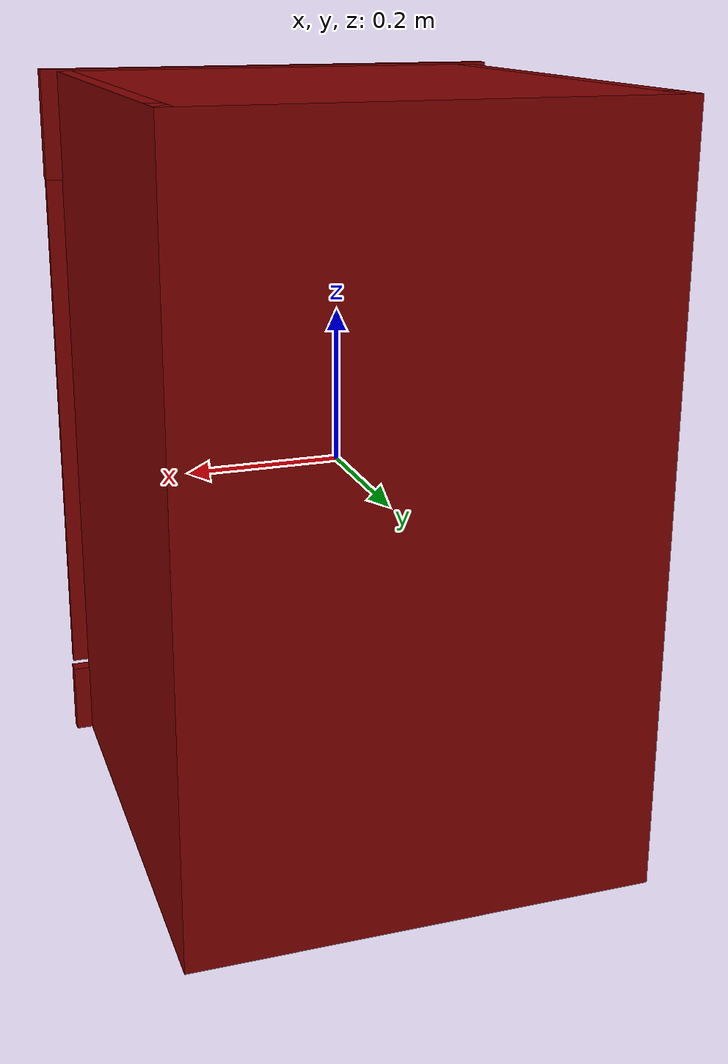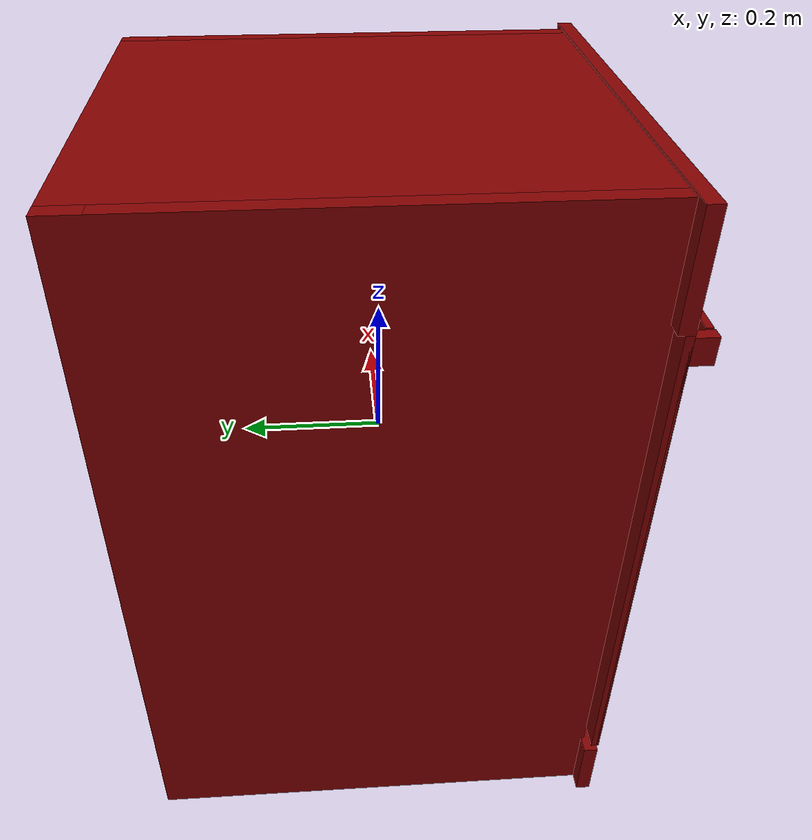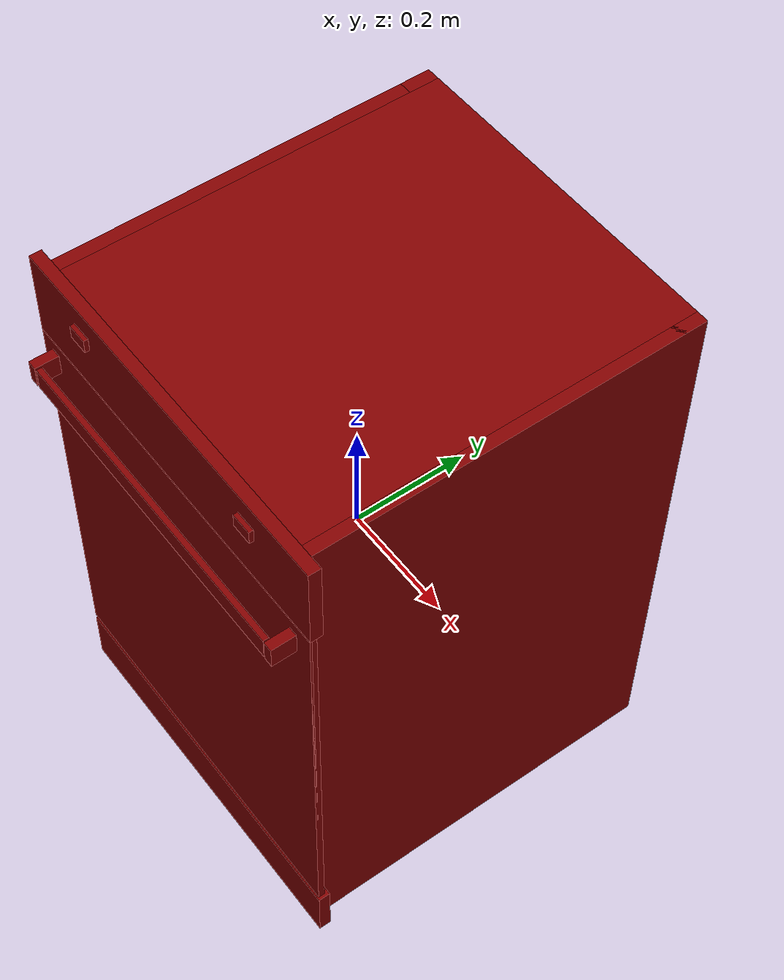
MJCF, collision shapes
<?xml version='1.0' encoding='UTF-8'?>
<mujoco model="model">
  <option timestep="0.002" gravity="0.0 0.0 -9.81"/>
  <compiler angle="radian"/>
  <asset>
    <mesh file="visuals/button_lock.obj" name="button_lock_vis"/>
    <mesh file="visuals/button_power.obj" name="button_power_vis"/>
    <mesh file="visuals/Body001.obj" name="Body001_vis"/>
    <mesh file="visuals/door.obj" name="door_vis"/>
    <mesh file="visuals/rack0.obj" name="rack0_vis"/>
    <mesh file="visuals/rack1.obj" name="rack1_vis"/>
    <texture file="visuals/T_BC001.png" name="Body001_material" type="2d"/>
    <material name="Body001_material" rgba="1 1 1 1.0" texture="Body001_material" shininess="0.5" specular="0.5"/>
    <texture file="visuals/T_BC001.png" name="button_lock_material" type="2d"/>
    <material name="button_lock_material" rgba="1 1 1 1.0" texture="button_lock_material" shininess="0.5" specular="0.3103448502657381"/>
    <texture file="visuals/T_BC001.png" name="button_power_material" type="2d"/>
    <material name="button_power_material" rgba="1 1 1 1.0" texture="button_power_material" shininess="0.5" specular="0.3103448502657381"/>
    <texture file="visuals/T_BC001.png" name="door_material" type="2d"/>
    <material name="door_material" rgba="1 1 1 1.0" texture="door_material" shininess="0.5" specular="0.5"/>
    <texture file="visuals/T_BC001.png" name="rack0_material" type="2d"/>
    <material name="rack0_material" rgba="1 1 1 1.0" texture="rack0_material" shininess="0.5" specular="7"/>
    <texture file="visuals/T_BC001.png" name="rack1_material" type="2d"/>
    <material name="rack1_material" rgba="1 1 1 1.0" texture="rack1_material" shininess="0.5" specular="7"/>
  </asset>
  <default>
    <default class="visual">
      <geom conaffinity="0" contype="0" group="1" type="mesh"/>
    </default>
    <default class="collision">
      <geom group="0" rgba="0.5 0 0 0.5"/>
    </default>
    <default class="spawn">
      <geom group="0" rgba="1 1 1 0.5" contype="0" conaffinity="0"/>
      <site group="0" rgba="1 1 1 0.5"/>
    </default>
    <default class="region">
      <geom group="1" conaffinity="0" contype="0" rgba="0 1 0 0"/>
    </default>
  </default>
  <worldbody>
    <body>
      <body name="object">
        <geom mesh="Body001_vis" type="mesh" solimp="0.998 0.998 0.001" solref="0.001 1" friction="0.95 0.3 0.1" class="visual" material="Body001_material"/>
        <geom class="collision" type="box" pos="0.276782 0.027412 -0.001250" size="0.02303941920399666 0.3207204043865204 0.48832184076309204" quat="1.0 0.0 0.0 0.0"/>
        <geom class="collision" type="box" pos="0.001099 0.025724 0.408948" size="0.2785699963569641 0.3224084675312042 0.0781240463256836" quat="1.0 0.0 0.0 0.0"/>
        <geom class="collision" type="box" pos="0.001098 0.025534 -0.433344" size="0.2835451662540436 0.31878456473350525 0.05622786656022072" quat="1.0 0.0 0.0 0.0"/>
        <geom class="collision" type="box" pos="-0.000018 0.322726 -0.001250" size="0.29983875155448914 0.025406617671251297 0.48832184076309204" quat="1.0 0.0 0.0 0.0"/>
        <geom class="collision" type="box" pos="-0.234035 0.017616 0.014070" size="0.022516710683703423 0.28532058000564575 0.007528679445385933" quat="1.0 0.0 0.0 0.0"/>
        <geom class="collision" type="box" pos="-0.000040 -0.298734 -0.439078" size="0.3223387598991394 0.010000337846577168 0.049591921269893646" quat="1.0 0.0 0.0 0.0"/>
        <geom class="collision" type="box" pos="0.000039 -0.298664 0.416421" size="0.3223385214805603 0.009930133819580078 0.07315099239349365" quat="1.0 0.0 0.0 0.0"/>
        <geom class="collision" type="box" pos="-0.278092 0.027412 -0.001250" size="0.02176520973443985 0.3207204043865204 0.4883217513561249" quat="1.0 0.0 0.0 0.0"/>
        <geom class="collision" type="box" pos="-0.234035 0.017616 -0.264220" size="0.022516710683703423 0.28532058000564575 0.006652594543993473" quat="1.0 0.0 0.0 0.0"/>
        <geom class="collision" type="box" pos="0.230405 0.017616 -0.264332" size="0.02455715648829937 0.28532058000564575 0.0065404633060097694" quat="1.0 0.0 0.0 0.0"/>
        <geom class="collision" type="box" pos="0.230405 0.017616 0.014074" size="0.02455715648829937 0.28532058000564575 0.0075321807526052" quat="1.0 0.0 0.0 0.0"/>
        <body name="button_lock">
          <joint axis="0.0 1.0 0.0" pos="0.190552 -0.312055 0.445059" limited="true" name="button_lock_joint" range="0.0 0.005" type="slide" damping="1" frictionloss="1" armature=".01" stiffness="0.05"/>
          <geom mesh="button_lock_vis" type="mesh" solimp="0.998 0.998 0.001" solref="0.001 1" friction="0.95 0.3 0.1" class="visual" material="button_lock_material"/>
          <geom class="collision" type="box" pos="0.190349 -0.313681 0.445010" size="0.017222901806235313 0.0036236431915313005 0.01137456577271223" quat="1.0 0.0 0.0 0.0"/>
        </body>
        <body name="button_power">
          <joint axis="0.0 1.0 0.0" pos="-0.193869 -0.312055 0.445059" limited="true" name="button_power_joint" range="0.0 0.005" type="slide" damping="1" frictionloss="1" armature=".01" stiffness="0.05"/>
          <geom mesh="button_power_vis" type="mesh" solimp="0.998 0.998 0.001" solref="0.001 1" friction="0.95 0.3 0.1" class="visual" material="button_power_material"/>
          <geom class="collision" type="box" pos="-0.193876 -0.313681 0.445010" size="0.017222894355654716 0.0036236413288861513 0.011374558322131634" quat="1.0 0.0 0.0 0.0"/>
        </body>
        <body name="door">
          <joint axis="1.0 0.0 0.0" pos="-0.000040 -0.298734 -0.378582" limited="true" name="door_joint" range="0.0 0.5235987755982988" type="hinge" damping="1" frictionloss="1" armature=".01" stiffness="2" springref="-2"/>
          <geom mesh="door_vis" type="mesh" solimp="0.998 0.998 0.001" solref="0.001 1" friction="0.95 0.3 0.1" class="visual" material="door_material"/>
          <geom class="collision" type="box" pos="-0.000150 -0.303293 -0.018395" size="0.32139691710472107 0.00544140487909317 0.36079251766204834" quat="1.0 0.0 0.0 0.0"/>
          <geom class="collision" type="box" pos="-0.001198 -0.343716 0.305825" size="0.275890976190567 0.004677708260715008 0.01819428987801075" quat="1.0 0.0 0.0 0.0" name="door_handle_main"/>
          <geom class="collision" type="box" pos="-0.288914 -0.329161 0.305825" size="0.008229780942201614 0.01974363438785076 0.018194273114204407" quat="1.0 0.0 0.0 0.0"/>
          <geom class="collision" type="box" pos="0.284696 -0.329161 0.305825" size="0.007895600982010365 0.01974364183843136 0.018194278702139854" quat="1.0 0.0 0.0 0.0"/>
          <geom class="collision" type="box" pos="-0.000150 -0.307082 -0.018395" size="0.32139691710472107 0.0016521613579243422 0.36078932881355286" quat="1.0 0.0 0.0 0.0" name="door_main"/>
        </body>
        <body name="rack0">
          <geom class="region" name="reg_rack0" type="box" pos="0.0016064999999999968 0.0252685 -0.15323799999999999" size="0.24445650000000002 0.2260555 0.097995"/>
          <joint axis="0.0 -1.0 0.0" pos="0.001571 0.026201 -0.155022" limited="true" name="rack0_joint" range="0.0 0.163" type="slide" damping="1" frictionloss="1" armature=".01" stiffness="0.05"/>
          <geom mesh="rack0_vis" type="mesh" solimp="0.998 0.998 0.001" solref="0.001 1" friction="0.95 0.3 0.1" class="visual" material="rack0_material"/>
          <geom class="collision" type="cylinder" pos="-0.019109 0.170069 -0.191837" size="0.0025402321480214596 0.061900075525045395" quat="4.3319283804521547e-07 -2.0873290651479692e-08 0.0992436558008194 -0.9950631856918335"/>
          <geom class="collision" type="cylinder" pos="-0.019109 0.081380 -0.191763" size="0.0025402321480214596 0.061900075525045395" quat="7.976017286637216e-07 -4.665983155405229e-08 -0.08496014028787613 -0.99638432264328"/>
          <geom class="collision" type="cylinder" pos="-0.019109 -0.026373 -0.191872" size="0.0025402321480214596 0.0619000680744648" quat="5.6451420960002e-07 -8.122519545850082e-08 -0.1087351143360138 -0.9940707683563232"/>
          <geom class="collision" type="cylinder" pos="-0.019109 -0.132900 -0.191763" size="0.0025402321480214596 0.061900075525045395" quat="7.976017286637216e-07 -4.665983155405229e-08 -0.08496014028787613 -0.99638432264328"/>
          <geom class="collision" type="cylinder" pos="-0.058553 0.170363 -0.191778" size="0.0025402321480214596 0.061900075525045395" quat="4.3319283804521547e-07 -2.0873290651479692e-08 0.0992436558008194 -0.9950631856918335"/>
          <geom class="collision" type="cylinder" pos="-0.058553 0.081675 -0.191814" size="0.0025402321480214596 0.061900075525045395" quat="7.976017286637216e-07 -4.665983155405229e-08 -0.08496014028787613 -0.99638432264328"/>
          <geom class="collision" type="cylinder" pos="-0.058553 -0.026081 -0.191937" size="0.0025402321480214596 0.0619000680744648" quat="5.6451420960002e-07 -8.122519545850082e-08 -0.1087351143360138 -0.9940707683563232"/>
          <geom class="collision" type="cylinder" pos="-0.058553 -0.132605 -0.191814" size="0.0025402321480214596 0.061900075525045395" quat="7.976017286637216e-07 -4.665983155405229e-08 -0.08496014028787613 -0.99638432264328"/>
          <geom class="collision" type="cylinder" pos="-0.096479 0.170363 -0.191778" size="0.0025402321480214596 0.061900075525045395" quat="4.3319283804521547e-07 -2.0873290651479692e-08 0.0992436558008194 -0.9950631856918335"/>
          <geom class="collision" type="cylinder" pos="-0.096479 0.081675 -0.191814" size="0.0025402321480214596 0.061900075525045395" quat="7.976017286637216e-07 -4.665983155405229e-08 -0.08496014028787613 -0.99638432264328"/>
          <geom class="collision" type="cylinder" pos="-0.096479 -0.026081 -0.191937" size="0.0025402321480214596 0.0619000680744648" quat="5.6451420960002e-07 -8.122519545850082e-08 -0.1087351143360138 -0.9940707683563232"/>
          <geom class="collision" type="cylinder" pos="-0.096479 -0.132605 -0.191814" size="0.0025402321480214596 0.061900075525045395" quat="7.976017286637216e-07 -4.665983155405229e-08 -0.08496014028787613 -0.99638432264328"/>
          <geom class="collision" type="cylinder" pos="-0.135380 0.170363 -0.191778" size="0.0025402321480214596 0.061900075525045395" quat="4.3319283804521547e-07 -2.0873290651479692e-08 0.0992436558008194 -0.9950631856918335"/>
          <geom class="collision" type="cylinder" pos="-0.135380 0.081675 -0.191814" size="0.0025402321480214596 0.061900075525045395" quat="7.976017286637216e-07 -4.665983155405229e-08 -0.08496014028787613 -0.99638432264328"/>
          <geom class="collision" type="cylinder" pos="-0.135380 -0.026081 -0.191937" size="0.0025402321480214596 0.0619000680744648" quat="5.6451420960002e-07 -8.122519545850082e-08 -0.1087351143360138 -0.9940707683563232"/>
          <geom class="collision" type="cylinder" pos="-0.135380 -0.132605 -0.191814" size="0.0025402321480214596 0.061900075525045395" quat="7.976017286637216e-07 -4.665983155405229e-08 -0.08496014028787613 -0.99638432264328"/>
          <geom class="collision" type="cylinder" pos="-0.165532 0.170363 -0.191778" size="0.0025402321480214596 0.061900075525045395" quat="4.3319283804521547e-07 -2.0873290651479692e-08 0.0992436558008194 -0.9950631856918335"/>
          <geom class="collision" type="cylinder" pos="-0.165532 0.081675 -0.191814" size="0.0025402321480214596 0.061900075525045395" quat="7.976017286637216e-07 -4.665983155405229e-08 -0.08496014028787613 -0.99638432264328"/>
          <geom class="collision" type="cylinder" pos="-0.165532 -0.026081 -0.191937" size="0.0025402321480214596 0.0619000680744648" quat="5.6451420960002e-07 -8.122519545850082e-08 -0.1087351143360138 -0.9940707683563232"/>
          <geom class="collision" type="cylinder" pos="-0.165532 -0.132605 -0.191814" size="0.0025402321480214596 0.061900075525045395" quat="7.976017286637216e-07 -4.665983155405229e-08 -0.08496014028787613 -0.99638432264328"/>
          <geom class="collision" type="cylinder" pos="-0.204724 0.170363 -0.191778" size="0.0025402321480214596 0.061900075525045395" quat="4.3319283804521547e-07 -2.0873290651479692e-08 0.0992436558008194 -0.9950631856918335"/>
          <geom class="collision" type="cylinder" pos="-0.204724 0.081675 -0.191814" size="0.0025402321480214596 0.061900075525045395" quat="7.976017286637216e-07 -4.665983155405229e-08 -0.08496014028787613 -0.99638432264328"/>
          <geom class="collision" type="cylinder" pos="-0.204724 -0.026081 -0.191937" size="0.0025402321480214596 0.0619000680744648" quat="5.6451420960002e-07 -8.122519545850082e-08 -0.1087351143360138 -0.9940707683563232"/>
          <geom class="collision" type="cylinder" pos="-0.204724 -0.132605 -0.191814" size="0.0025402321480214596 0.061900075525045395" quat="7.976017286637216e-07 -4.665983155405229e-08 -0.08496014028787613 -0.99638432264328"/>
          <geom class="collision" type="cylinder" pos="0.018462 0.170363 -0.191778" size="0.0025402321480214596 0.061900075525045395" quat="4.3319283804521547e-07 -2.0873290651479692e-08 0.0992436558008194 -0.9950631856918335"/>
          <geom class="collision" type="cylinder" pos="0.018462 0.081675 -0.191814" size="0.0025402321480214596 0.061900075525045395" quat="7.976017286637216e-07 -4.665983155405229e-08 -0.08496014028787613 -0.99638432264328"/>
          <geom class="collision" type="cylinder" pos="0.018462 -0.026081 -0.191937" size="0.0025402321480214596 0.0619000680744648" quat="5.6451420960002e-07 -8.122519545850082e-08 -0.1087351143360138 -0.9940707683563232"/>
          <geom class="collision" type="cylinder" pos="0.018462 -0.132605 -0.191814" size="0.0025402321480214596 0.061900075525045395" quat="7.976017286637216e-07 -4.665983155405229e-08 -0.08496014028787613 -0.99638432264328"/>
          <geom class="collision" type="cylinder" pos="0.057536 0.170363 -0.191778" size="0.0025402321480214596 0.061900075525045395" quat="4.3319283804521547e-07 -2.0873290651479692e-08 0.0992436558008194 -0.9950631856918335"/>
          <geom class="collision" type="cylinder" pos="0.057536 0.081675 -0.191814" size="0.0025402321480214596 0.061900075525045395" quat="7.976017286637216e-07 -4.665983155405229e-08 -0.08496014028787613 -0.99638432264328"/>
          <geom class="collision" type="cylinder" pos="0.057536 -0.026081 -0.191937" size="0.0025402321480214596 0.0619000680744648" quat="5.6451420960002e-07 -8.122519545850082e-08 -0.1087351143360138 -0.9940707683563232"/>
          <geom class="collision" type="cylinder" pos="0.057536 -0.132605 -0.191814" size="0.0025402321480214596 0.061900075525045395" quat="7.976017286637216e-07 -4.665983155405229e-08 -0.08496014028787613 -0.99638432264328"/>
          <geom class="collision" type="cylinder" pos="0.095709 0.170363 -0.191778" size="0.0025402321480214596 0.061900075525045395" quat="4.3319283804521547e-07 -2.0873290651479692e-08 0.0992436558008194 -0.9950631856918335"/>
          <geom class="collision" type="cylinder" pos="0.095709 0.081675 -0.191814" size="0.0025402321480214596 0.061900075525045395" quat="7.976017286637216e-07 -4.665983155405229e-08 -0.08496014028787613 -0.99638432264328"/>
          <geom class="collision" type="cylinder" pos="0.095709 -0.026081 -0.191937" size="0.0025402321480214596 0.0619000680744648" quat="5.6451420960002e-07 -8.122519545850082e-08 -0.1087351143360138 -0.9940707683563232"/>
          <geom class="collision" type="cylinder" pos="0.095709 -0.132605 -0.191814" size="0.0025402321480214596 0.061900075525045395" quat="7.976017286637216e-07 -4.665983155405229e-08 -0.08496014028787613 -0.99638432264328"/>
          <geom class="collision" type="cylinder" pos="0.134236 0.170363 -0.191778" size="0.0025402321480214596 0.061900075525045395" quat="4.3319283804521547e-07 -2.0873290651479692e-08 0.0992436558008194 -0.9950631856918335"/>
          <geom class="collision" type="cylinder" pos="0.134236 0.081675 -0.191814" size="0.0025402321480214596 0.061900075525045395" quat="7.976017286637216e-07 -4.665983155405229e-08 -0.08496014028787613 -0.99638432264328"/>
          <geom class="collision" type="cylinder" pos="0.134236 -0.026081 -0.191937" size="0.0025402321480214596 0.0619000680744648" quat="5.6451420960002e-07 -8.122519545850082e-08 -0.1087351143360138 -0.9940707683563232"/>
          <geom class="collision" type="cylinder" pos="0.134236 -0.132605 -0.191814" size="0.0025402321480214596 0.061900075525045395" quat="7.976017286637216e-07 -4.665983155405229e-08 -0.08496014028787613 -0.99638432264328"/>
          <geom class="collision" type="cylinder" pos="0.173250 0.170363 -0.191778" size="0.0025402321480214596 0.061900075525045395" quat="4.3319283804521547e-07 -2.0873290651479692e-08 0.0992436558008194 -0.9950631856918335"/>
          <geom class="collision" type="cylinder" pos="0.173250 0.081675 -0.191814" size="0.0025402321480214596 0.061900075525045395" quat="7.976017286637216e-07 -4.665983155405229e-08 -0.08496014028787613 -0.99638432264328"/>
          <geom class="collision" type="cylinder" pos="0.173250 -0.026081 -0.191937" size="0.0025402321480214596 0.0619000680744648" quat="5.6451420960002e-07 -8.122519545850082e-08 -0.1087351143360138 -0.9940707683563232"/>
          <geom class="collision" type="cylinder" pos="0.173250 -0.132605 -0.191814" size="0.0025402321480214596 0.061900075525045395" quat="7.976017286637216e-07 -4.665983155405229e-08 -0.08496014028787613 -0.99638432264328"/>
          <geom class="collision" type="cylinder" pos="0.211944 0.170363 -0.191778" size="0.0025402321480214596 0.061900075525045395" quat="4.3319283804521547e-07 -2.0873290651479692e-08 0.0992436558008194 -0.9950631856918335"/>
          <geom class="collision" type="box" pos="0.211944 0.081675 -0.191814" size="0.0025402321480214596 0.0025402375031262636 0.061900075525045395" quat="7.976017286637216e-07 -4.665983155405229e-08 -0.08496014028787613 -0.99638432264328"/>
          <geom class="collision" type="cylinder" pos="0.211944 -0.026081 -0.191937" size="0.0025402321480214596 0.0619000680744648" quat="5.6451420960002e-07 -8.122519545850082e-08 -0.1087351143360138 -0.9940707683563232"/>
          <geom class="collision" type="cylinder" pos="0.211944 -0.132605 -0.191814" size="0.0025402321480214596 0.061900075525045395" quat="7.976017286637216e-07 -4.665983155405229e-08 -0.08496014028787613 -0.99638432264328"/>
          <geom class="collision" type="box" pos="-0.240471 0.025126 -0.155376" size="0.005536212120205164 0.23354104161262512 0.10069926083087921" quat="1.0 0.0 0.0 0.0"/>
          <geom class="collision" type="box" pos="0.244302 0.025126 -0.155376" size="0.005536212120205164 0.2335415482521057 0.10069926083087921" quat="1.0 0.0 0.0 0.0"/>
          <geom class="collision" type="box" pos="-0.149777 -0.202612 -0.152486" size="0.08351397514343262 0.005536250304430723 0.09600427746772766" quat="1.0 0.0 0.0 0.0"/>
          <geom class="collision" type="box" pos="0.000253 0.252125 -0.154040" size="0.2335447371006012 0.005536182783544064 0.099264957010746" quat="1.0 0.0 0.0 0.0"/>
          <geom class="collision" type="box" pos="0.000253 0.025423 -0.252240" size="0.23653914034366608 0.229714035987854 0.0023557692766189575" quat="1.0 0.0 0.0 0.0"/>
          <geom class="collision" type="box" pos="0.000253 -0.202612 -0.209052" size="0.2335447371006012 0.005536250304430723 0.039437856525182724" quat="1.0 0.0 0.0 0.0"/>
          <geom class="collision" type="box" pos="0.172241 -0.202612 -0.152486" size="0.07321833819150925 0.005536250304430723 0.09600427746772766" quat="1.0 0.0 0.0 0.0"/>
          <geom class="collision" type="box" pos="0.015585 -0.200363 -0.100906" size="0.08813349157571793 0.003876217408105731 0.003876217408105731" quat="1.0 0.0 0.0 0.0"/>
          <geom class="collision" type="box" pos="0.015585 -0.204683 -0.058389" size="0.08813346922397614 0.003876216011121869 0.003876216011121869" quat="1.0 0.0 0.0 0.0"/>
        </body>
        <body name="rack1">
          <geom class="region" name="reg_rack1" type="box" pos="0.0016064999999999968 0.0252685 0.12459" size="0.24445650000000002 0.2260555 0.097995"/>
          <joint axis="0.0 -1.0 0.0" pos="0.001571 0.026201 0.122709" limited="true" name="rack1_joint" range="0.0 0.3235" type="slide" damping="1" frictionloss="1" armature=".01" stiffness="0.05"/>
          <geom mesh="rack1_vis" type="mesh" solimp="0.998 0.998 0.001" solref="0.001 1" friction="0.95 0.3 0.1" class="visual" material="rack1_material"/>
          <geom class="collision" type="cylinder" pos="0.211944 0.170363 0.085958" size="0.0025402321480214596 0.061900075525045395" quat="4.3319283804521547e-07 -2.0873290651479692e-08 0.0992436558008194 -0.9950631856918335"/>
          <geom class="collision" type="cylinder" pos="0.173250 0.170363 0.085958" size="0.0025402321480214596 0.061900075525045395" quat="4.3319283804521547e-07 -2.0873290651479692e-08 0.0992436558008194 -0.9950631856918335"/>
          <geom class="collision" type="cylinder" pos="0.134236 0.170363 0.085958" size="0.0025402321480214596 0.061900075525045395" quat="4.3319283804521547e-07 -2.0873290651479692e-08 0.0992436558008194 -0.9950631856918335"/>
          <geom class="collision" type="cylinder" pos="0.095709 0.170363 0.085958" size="0.0025402321480214596 0.061900075525045395" quat="4.3319283804521547e-07 -2.0873290651479692e-08 0.0992436558008194 -0.9950631856918335"/>
          <geom class="collision" type="cylinder" pos="0.057536 0.170363 0.085958" size="0.0025402321480214596 0.061900075525045395" quat="4.3319283804521547e-07 -2.0873290651479692e-08 0.0992436558008194 -0.9950631856918335"/>
          <geom class="collision" type="cylinder" pos="0.018462 0.170363 0.085958" size="0.0025402321480214596 0.061900075525045395" quat="4.3319283804521547e-07 -2.0873290651479692e-08 0.0992436558008194 -0.9950631856918335"/>
          <geom class="collision" type="cylinder" pos="-0.204724 0.170363 0.085958" size="0.0025402321480214596 0.061900075525045395" quat="4.3319283804521547e-07 -2.0873290651479692e-08 0.0992436558008194 -0.9950631856918335"/>
          <geom class="collision" type="cylinder" pos="-0.165532 0.170363 0.085958" size="0.0025402321480214596 0.061900075525045395" quat="4.3319283804521547e-07 -2.0873290651479692e-08 0.0992436558008194 -0.9950631856918335"/>
          <geom class="collision" type="cylinder" pos="-0.135380 0.170363 0.085958" size="0.0025402321480214596 0.061900075525045395" quat="4.3319283804521547e-07 -2.0873290651479692e-08 0.0992436558008194 -0.9950631856918335"/>
          <geom class="collision" type="cylinder" pos="-0.096479 0.170363 0.085958" size="0.0025402321480214596 0.061900075525045395" quat="4.3319283804521547e-07 -2.0873290651479692e-08 0.0992436558008194 -0.9950631856918335"/>
          <geom class="collision" type="cylinder" pos="-0.058553 0.170363 0.085958" size="0.0025402321480214596 0.061900075525045395" quat="4.3319283804521547e-07 -2.0873290651479692e-08 0.0992436558008194 -0.9950631856918335"/>
          <geom class="collision" type="cylinder" pos="-0.019109 0.170069 0.085899" size="0.0025402321480214596 0.061900075525045395" quat="4.3319283804521547e-07 -2.0873290651479692e-08 0.0992436558008194 -0.9950631856918335"/>
          <geom class="collision" type="cylinder" pos="0.211944 0.081675 0.085922" size="0.0025402321480214596 0.061900075525045395" quat="7.976017286637216e-07 -4.665983155405229e-08 -0.08496014028787613 -0.99638432264328"/>
          <geom class="collision" type="cylinder" pos="0.173250 0.081675 0.085922" size="0.0025402321480214596 0.061900075525045395" quat="7.976017286637216e-07 -4.665983155405229e-08 -0.08496014028787613 -0.99638432264328"/>
          <geom class="collision" type="cylinder" pos="0.134236 0.081675 0.085922" size="0.0025402321480214596 0.061900075525045395" quat="7.976017286637216e-07 -4.665983155405229e-08 -0.08496014028787613 -0.99638432264328"/>
          <geom class="collision" type="cylinder" pos="0.095709 0.081675 0.085922" size="0.0025402321480214596 0.061900075525045395" quat="7.976017286637216e-07 -4.665983155405229e-08 -0.08496014028787613 -0.99638432264328"/>
          <geom class="collision" type="cylinder" pos="0.057536 0.081675 0.085922" size="0.0025402321480214596 0.061900075525045395" quat="7.976017286637216e-07 -4.665983155405229e-08 -0.08496014028787613 -0.99638432264328"/>
          <geom class="collision" type="cylinder" pos="0.018462 0.081675 0.085922" size="0.0025402321480214596 0.061900075525045395" quat="7.976017286637216e-07 -4.665983155405229e-08 -0.08496014028787613 -0.99638432264328"/>
          <geom class="collision" type="cylinder" pos="-0.204724 0.081675 0.085922" size="0.0025402321480214596 0.061900075525045395" quat="7.976017286637216e-07 -4.665983155405229e-08 -0.08496014028787613 -0.99638432264328"/>
          <geom class="collision" type="cylinder" pos="-0.165532 0.081675 0.085922" size="0.0025402321480214596 0.061900075525045395" quat="7.976017286637216e-07 -4.665983155405229e-08 -0.08496014028787613 -0.99638432264328"/>
          <geom class="collision" type="cylinder" pos="-0.135380 0.081675 0.085922" size="0.0025402321480214596 0.061900075525045395" quat="7.976017286637216e-07 -4.665983155405229e-08 -0.08496014028787613 -0.99638432264328"/>
          <geom class="collision" type="cylinder" pos="-0.096479 0.081675 0.085922" size="0.0025402321480214596 0.061900075525045395" quat="7.976017286637216e-07 -4.665983155405229e-08 -0.08496014028787613 -0.99638432264328"/>
          <geom class="collision" type="cylinder" pos="-0.058553 0.081675 0.085922" size="0.0025402321480214596 0.061900075525045395" quat="7.976017286637216e-07 -4.665983155405229e-08 -0.08496014028787613 -0.99638432264328"/>
          <geom class="collision" type="cylinder" pos="-0.019109 0.081380 0.085972" size="0.0025402321480214596 0.061900075525045395" quat="7.976017286637216e-07 -4.665983155405229e-08 -0.08496014028787613 -0.99638432264328"/>
          <geom class="collision" type="cylinder" pos="0.211944 -0.026081 0.085798" size="0.0025402321480214596 0.0619000680744648" quat="5.6451420960002e-07 -8.122519545850082e-08 -0.1087351143360138 -0.9940707683563232"/>
          <geom class="collision" type="cylinder" pos="0.173250 -0.026081 0.085798" size="0.0025402321480214596 0.0619000680744648" quat="5.6451420960002e-07 -8.122519545850082e-08 -0.1087351143360138 -0.9940707683563232"/>
          <geom class="collision" type="cylinder" pos="0.134236 -0.026081 0.085798" size="0.0025402321480214596 0.0619000680744648" quat="5.6451420960002e-07 -8.122519545850082e-08 -0.1087351143360138 -0.9940707683563232"/>
          <geom class="collision" type="cylinder" pos="0.095709 -0.026081 0.085798" size="0.0025402321480214596 0.0619000680744648" quat="5.6451420960002e-07 -8.122519545850082e-08 -0.1087351143360138 -0.9940707683563232"/>
          <geom class="collision" type="cylinder" pos="0.057536 -0.026081 0.085798" size="0.0025402321480214596 0.0619000680744648" quat="5.6451420960002e-07 -8.122519545850082e-08 -0.1087351143360138 -0.9940707683563232"/>
          <geom class="collision" type="cylinder" pos="0.018462 -0.026081 0.085798" size="0.0025402321480214596 0.0619000680744648" quat="5.6451420960002e-07 -8.122519545850082e-08 -0.1087351143360138 -0.9940707683563232"/>
          <geom class="collision" type="cylinder" pos="-0.204724 -0.026081 0.085798" size="0.0025402321480214596 0.0619000680744648" quat="5.6451420960002e-07 -8.122519545850082e-08 -0.1087351143360138 -0.9940707683563232"/>
          <geom class="collision" type="cylinder" pos="-0.165532 -0.026081 0.085798" size="0.0025402321480214596 0.0619000680744648" quat="5.6451420960002e-07 -8.122519545850082e-08 -0.1087351143360138 -0.9940707683563232"/>
          <geom class="collision" type="cylinder" pos="-0.135380 -0.026081 0.085798" size="0.0025402321480214596 0.0619000680744648" quat="5.6451420960002e-07 -8.122519545850082e-08 -0.1087351143360138 -0.9940707683563232"/>
          <geom class="collision" type="cylinder" pos="-0.096479 -0.026081 0.085798" size="0.0025402321480214596 0.0619000680744648" quat="5.6451420960002e-07 -8.122519545850082e-08 -0.1087351143360138 -0.9940707683563232"/>
          <geom class="collision" type="cylinder" pos="-0.058553 -0.026081 0.085798" size="0.0025402321480214596 0.0619000680744648" quat="5.6451420960002e-07 -8.122519545850082e-08 -0.1087351143360138 -0.9940707683563232"/>
          <geom class="collision" type="cylinder" pos="-0.019109 -0.026373 0.085863" size="0.0025402321480214596 0.0619000680744648" quat="5.6451420960002e-07 -8.122519545850082e-08 -0.1087351143360138 -0.9940707683563232"/>
          <geom class="collision" type="cylinder" pos="0.211944 -0.132605 0.085922" size="0.0025402321480214596 0.061900075525045395" quat="7.976017286637216e-07 -4.665983155405229e-08 -0.08496014028787613 -0.99638432264328"/>
          <geom class="collision" type="cylinder" pos="0.173250 -0.132605 0.085922" size="0.0025402321480214596 0.061900075525045395" quat="7.976017286637216e-07 -4.665983155405229e-08 -0.08496014028787613 -0.99638432264328"/>
          <geom class="collision" type="cylinder" pos="0.134236 -0.132605 0.085922" size="0.0025402321480214596 0.061900075525045395" quat="7.976017286637216e-07 -4.665983155405229e-08 -0.08496014028787613 -0.99638432264328"/>
          <geom class="collision" type="cylinder" pos="0.095709 -0.132605 0.085922" size="0.0025402321480214596 0.061900075525045395" quat="7.976017286637216e-07 -4.665983155405229e-08 -0.08496014028787613 -0.99638432264328"/>
          <geom class="collision" type="cylinder" pos="0.057536 -0.132605 0.085922" size="0.0025402321480214596 0.061900075525045395" quat="7.976017286637216e-07 -4.665983155405229e-08 -0.08496014028787613 -0.99638432264328"/>
          <geom class="collision" type="cylinder" pos="0.018462 -0.132605 0.085922" size="0.0025402321480214596 0.061900075525045395" quat="7.976017286637216e-07 -4.665983155405229e-08 -0.08496014028787613 -0.99638432264328"/>
          <geom class="collision" type="cylinder" pos="-0.204724 -0.132605 0.085922" size="0.0025402321480214596 0.061900075525045395" quat="7.976017286637216e-07 -4.665983155405229e-08 -0.08496014028787613 -0.99638432264328"/>
          <geom class="collision" type="cylinder" pos="-0.165532 -0.132605 0.085922" size="0.0025402321480214596 0.061900075525045395" quat="7.976017286637216e-07 -4.665983155405229e-08 -0.08496014028787613 -0.99638432264328"/>
          <geom class="collision" type="cylinder" pos="-0.135380 -0.132605 0.085922" size="0.0025402321480214596 0.061900075525045395" quat="7.976017286637216e-07 -4.665983155405229e-08 -0.08496014028787613 -0.99638432264328"/>
          <geom class="collision" type="box" pos="-0.096479 -0.132605 0.085922" size="0.0025402321480214596 0.0025402375031262636 0.061900075525045395" quat="7.976017286637216e-07 -4.665983155405229e-08 -0.08496014028787613 -0.99638432264328"/>
          <geom class="collision" type="cylinder" pos="-0.058553 -0.132605 0.085922" size="0.0025402321480214596 0.061900075525045395" quat="7.976017286637216e-07 -4.665983155405229e-08 -0.08496014028787613 -0.99638432264328"/>
          <geom class="collision" type="cylinder" pos="-0.019109 -0.132900 0.085972" size="0.0025402321480214596 0.061900075525045395" quat="7.976017286637216e-07 -4.665983155405229e-08 -0.08496014028787613 -0.99638432264328"/>
          <geom class="collision" type="box" pos="-0.240471 0.025126 0.121741" size="0.005536212120205164 0.2335447371006012 0.09884707629680634" quat="1.0 0.0 0.0 0.0"/>
          <geom class="collision" type="box" pos="0.243724 0.025126 0.121741" size="0.005536212120205164 0.2335447371006012 0.09884707629680634" quat="1.0 0.0 0.0 0.0"/>
          <geom class="collision" type="box" pos="-0.149777 -0.202612 0.121741" size="0.08351397514343262 0.005536250304430723 0.09884707629680634" quat="1.0 0.0 0.0 0.0"/>
          <geom class="collision" type="box" pos="0.000253 0.255526 0.121741" size="0.2335447371006012 0.005536250304430723 0.09884707629680634" quat="1.0 0.0 0.0 0.0"/>
          <geom class="collision" type="box" pos="0.000253 0.027248 0.028949" size="0.23218710720539093 0.23050041496753693 0.005536165088415146" quat="1.0 0.0 0.0 0.0"/>
          <geom class="collision" type="box" pos="0.000253 -0.202612 0.065174" size="0.2335447371006012 0.005536250304430723 0.0422806590795517" quat="1.0 0.0 0.0 0.0"/>
          <geom class="collision" type="box" pos="0.172241 -0.202612 0.121741" size="0.07321833819150925 0.005536250304430723 0.09884707629680634" quat="1.0 0.0 0.0 0.0"/>
          <geom class="collision" type="box" pos="0.015585 -0.200363 0.176163" size="0.08813369274139404 0.0038762297481298447 0.0038762297481298447" quat="1.0 0.0 0.0 0.0"/>
          <geom class="collision" type="box" pos="0.015585 -0.204683 0.218680" size="0.08813367038965225 0.0038762283511459827 0.0038762283511459827" quat="1.0 0.0 0.0 0.0"/>
        </body>
        <geom class="region" name="reg_int" type="box" pos="-1.8000000000018e-05 0.009757500000000002 -0.018845499999999987" size="0.257131 0.2984915 0.35775049999999997"/>
        <geom class="region" name="reg_main" type="box" pos="0.0 0.019698500000000008 0.0" size="0.322378 0.3284335 0.489572"/>
      </body>
    </body>
  </worldbody>
  <actuator>
    <motor name="button_lock_joint_actuator" joint="button_lock_joint" gear="0.5"/>
    <motor name="button_power_joint_actuator" joint="button_power_joint" gear="0.5"/>
    <motor name="door_joint_actuator" joint="door_joint" gear="50"/>
    <motor name="rack0_joint_actuator" joint="rack0_joint" gear="10"/>
    <motor name="rack1_joint_actuator" joint="rack1_joint" gear="10"/>
  </actuator>
</mujoco>
